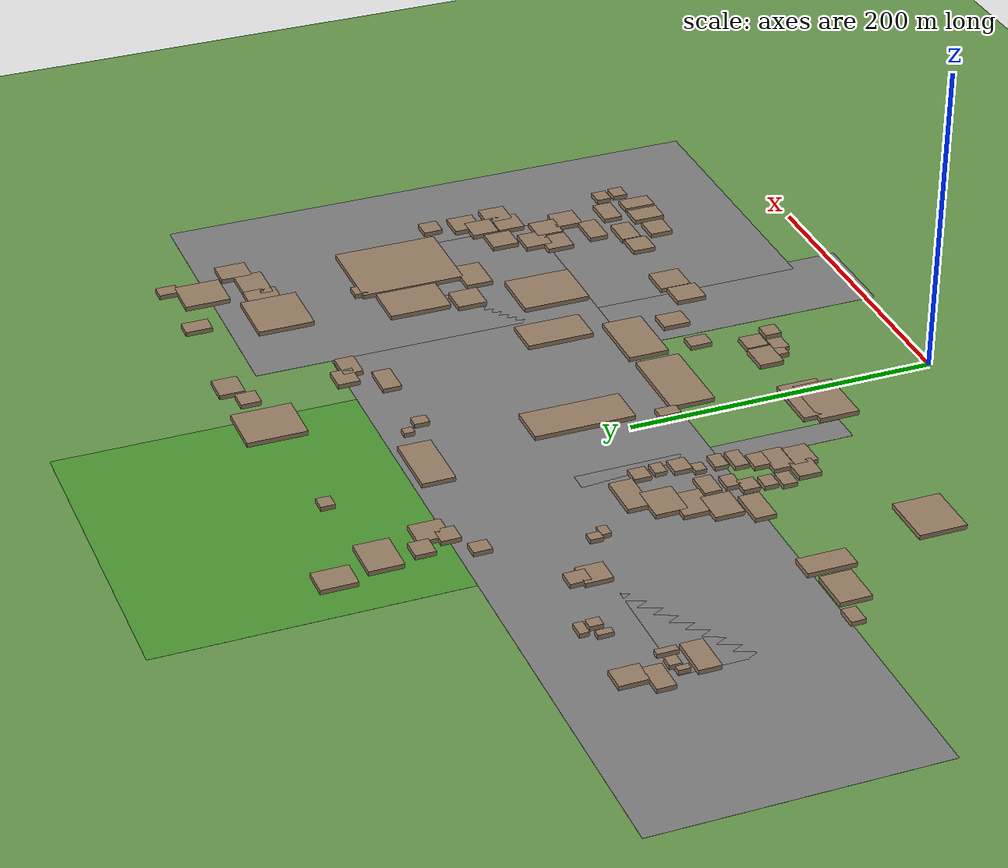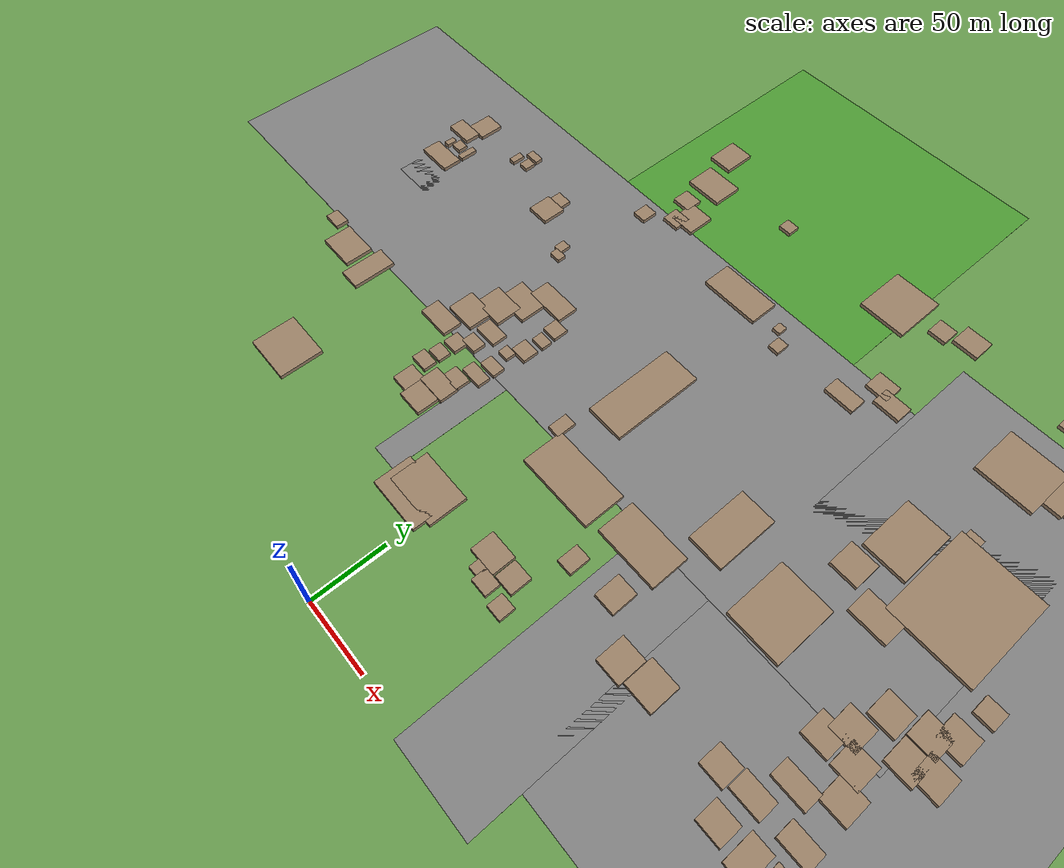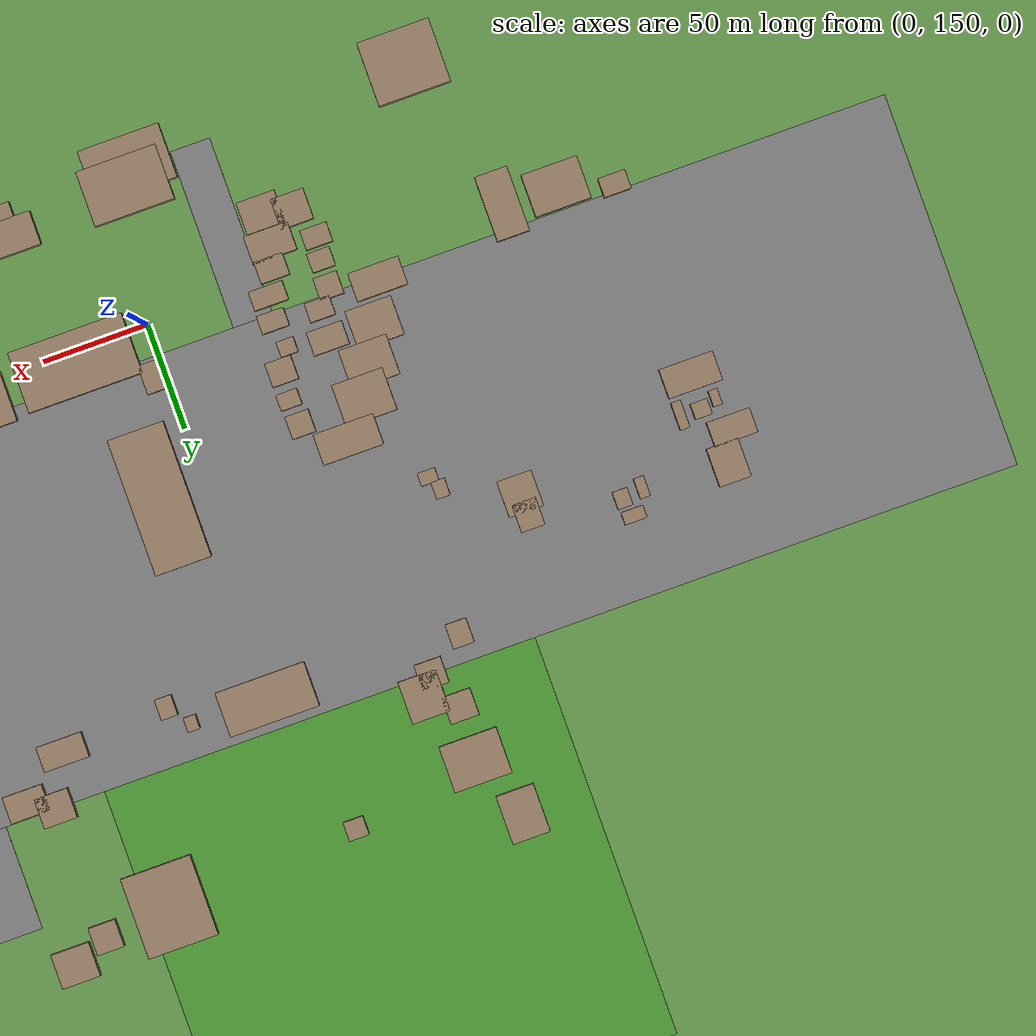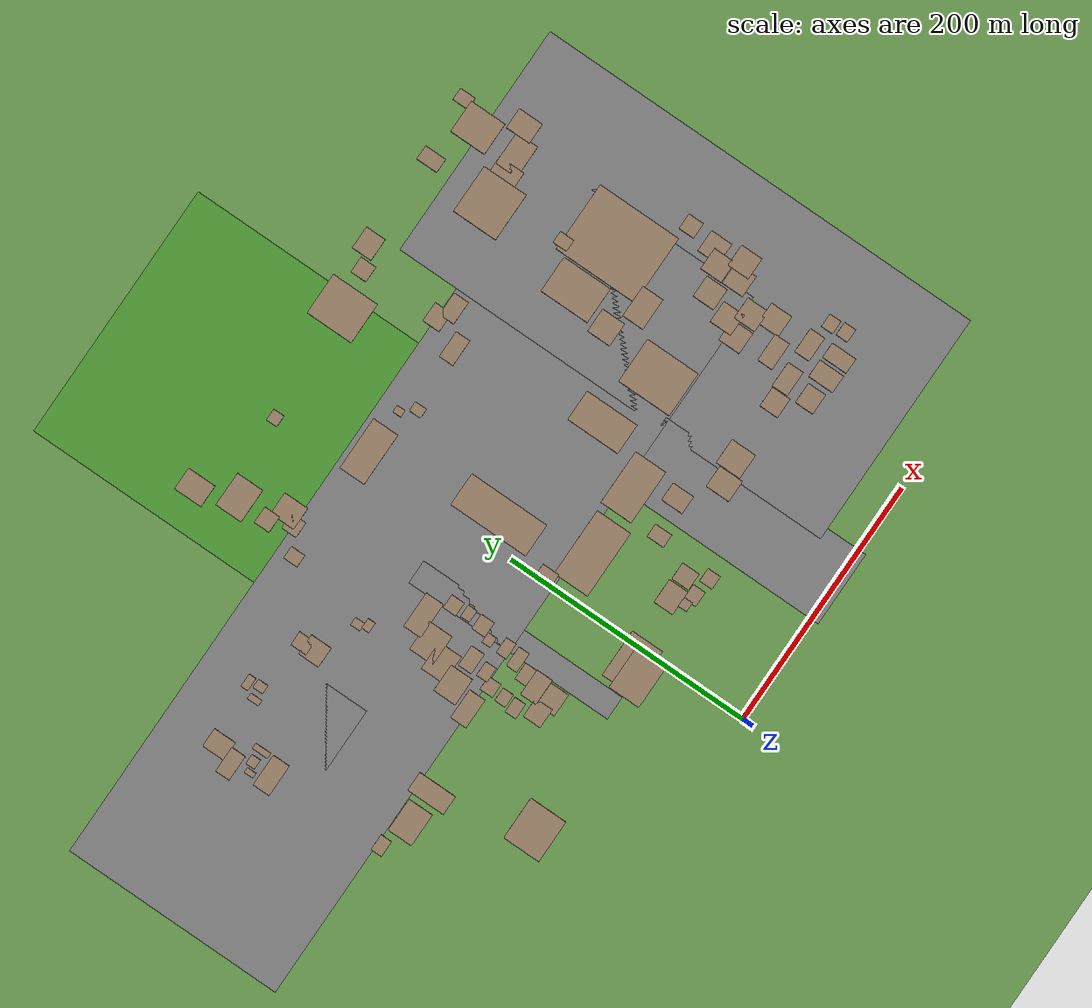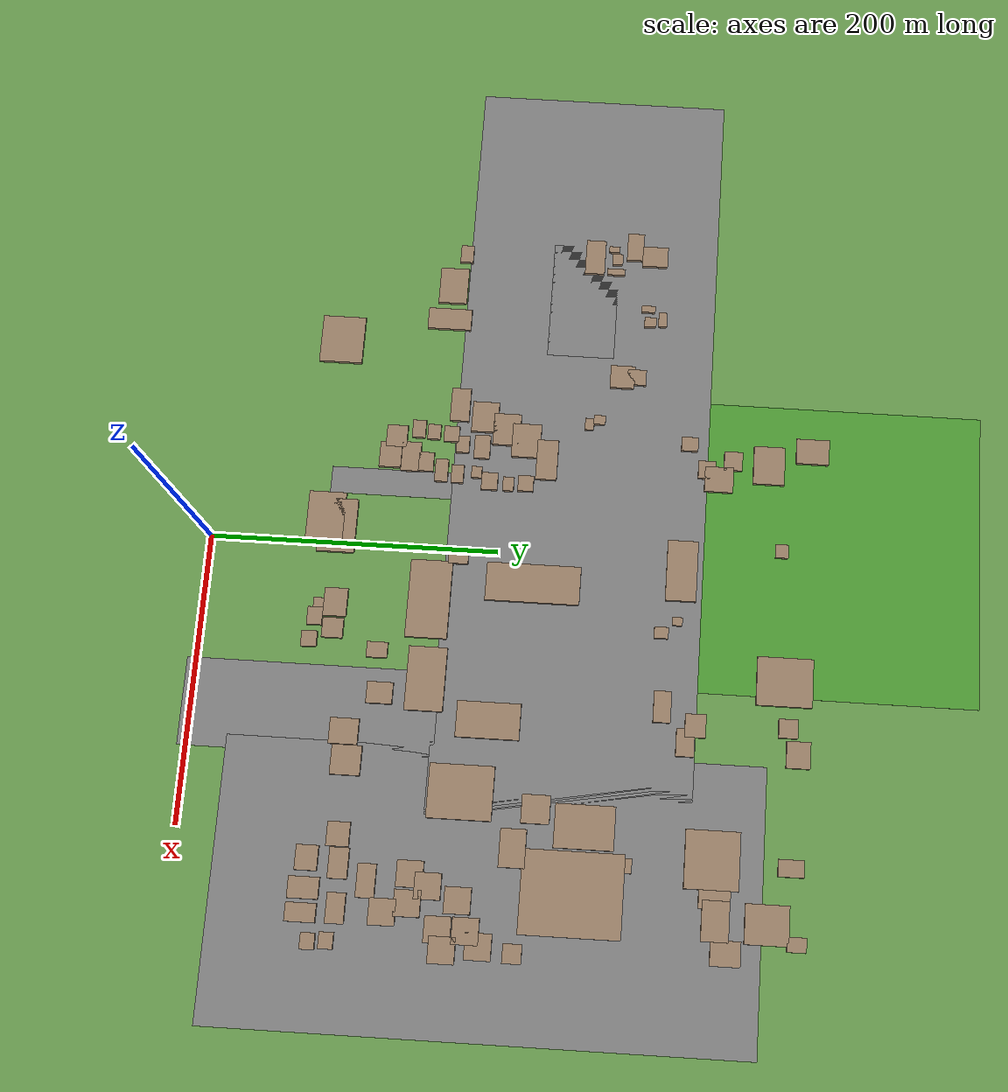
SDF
<sdf version="1.9">
 <world name="kimje_farmland">
  <model name="ground_plane">
   <static>true</static>
   <link name="link">
    <collision name="collision">
     <geometry><plane><normal>0 0 1</normal><size>2000 2000</size></plane></geometry>
    </collision>
    <visual name="visual">
     <geometry><plane><normal>0 0 1</normal><size>2000 2000</size></plane></geometry>
     <material><ambient>0.4 0.6 0.3 1</ambient><diffuse>0.4 0.6 0.3 1</diffuse></material>
    </visual>
   </link>
  </model>
  <model name="osm_4">
   <static>true</static>
   <pose>-48.92 253.60 0.040 0 0 0</pose>
   <link name="link">
    <collision name="collision"><geometry><box><size>602.51 178.39 0.080</size></box></geometry></collision>
    <visual name="visual">
     <geometry><box><size>602.51 178.39 0.080</size></box></geometry>
     <material><ambient>0.5 0.5 0.5 1</ambient><diffuse>0.5 0.5 0.5 1</diffuse></material>
    </visual>
   </link>
  </model>
  <model name="osm_79">
   <static>true</static>
   <pose>-190.80 248.13 0.040 0 0 0</pose>
   <link name="link">
    <collision name="collision"><geometry><box><size>86.01 47.51 0.080</size></box></geometry></collision>
    <visual name="visual">
     <geometry><box><size>86.01 47.51 0.080</size></box></geometry>
     <material><ambient>0.5 0.5 0.5 1</ambient><diffuse>0.5 0.5 0.5 1</diffuse></material>
    </visual>
   </link>
  </model>
  <model name="osm_104">
   <static>true</static>
   <pose>231.89 209.43 0.040 0 0 0</pose>
   <link name="link">
    <collision name="collision"><geometry><box><size>189.30 364.63 0.080</size></box></geometry></collision>
    <visual name="visual">
     <geometry><box><size>189.30 364.63 0.080</size></box></geometry>
     <material><ambient>0.5 0.5 0.5 1</ambient><diffuse>0.5 0.5 0.5 1</diffuse></material>
    </visual>
   </link>
  </model>
  <model name="osm_123">
   <static>true</static>
   <pose>-45.68 165.60 0.040 0 0 0</pose>
   <link name="link">
    <collision name="collision"><geometry><box><size>18.99 172.09 0.080</size></box></geometry></collision>
    <visual name="visual">
     <geometry><box><size>18.99 172.09 0.080</size></box></geometry>
     <material><ambient>0.5 0.5 0.5 1</ambient><diffuse>0.5 0.5 0.5 1</diffuse></material>
    </visual>
   </link>
  </model>
  <model name="osm_363">
   <static>true</static>
   <pose>-85.66 416.06 1.500 0 0 0</pose>
   <link name="link">
    <collision name="collision"><geometry><box><size>17.95 22.97 3.000</size></box></geometry></collision>
    <visual name="visual">
     <geometry><box><size>17.95 22.97 3.000</size></box></geometry>
     <material><ambient>0.6 0.5 0.4 1</ambient><diffuse>0.6 0.5 0.4 1</diffuse></material>
    </visual>
   </link>
  </model>
  <model name="osm_365">
   <static>true</static>
   <pose>-73.65 385.74 1.500 0 0 0</pose>
   <link name="link">
    <collision name="collision"><geometry><box><size>27.47 21.89 3.000</size></box></geometry></collision>
    <visual name="visual">
     <geometry><box><size>27.47 21.89 3.000</size></box></geometry>
     <material><ambient>0.6 0.5 0.4 1</ambient><diffuse>0.6 0.5 0.4 1</diffuse></material>
    </visual>
   </link>
  </model>
  <model name="osm_366">
   <static>true</static>
   <pose>-75.43 360.56 1.500 0 0 0</pose>
   <link name="link">
    <collision name="collision"><geometry><box><size>13.53 12.86 3.000</size></box></geometry></collision>
    <visual name="visual">
     <geometry><box><size>13.53 12.86 3.000</size></box></geometry>
     <material><ambient>0.6 0.5 0.4 1</ambient><diffuse>0.6 0.5 0.4 1</diffuse></material>
    </visual>
   </link>
  </model>
  <model name="osm_367">
   <static>true</static>
   <pose>-12.27 396.82 1.500 0 0 0</pose>
   <link name="link">
    <collision name="collision"><geometry><box><size>9.48 8.93 3.000</size></box></geometry></collision>
    <visual name="visual">
     <geometry><box><size>9.48 8.93 3.000</size></box></geometry>
     <material><ambient>0.6 0.5 0.4 1</ambient><diffuse>0.6 0.5 0.4 1</diffuse></material>
    </visual>
   </link>
  </model>
  <model name="osm_371">
   <static>true</static>
   <pose>79.21 401.67 1.500 0 0 0</pose>
   <link name="link">
    <collision name="collision"><geometry><box><size>33.43 38.25 3.000</size></box></geometry></collision>
    <visual name="visual">
     <geometry><box><size>33.43 38.25 3.000</size></box></geometry>
     <material><ambient>0.6 0.5 0.4 1</ambient><diffuse>0.6 0.5 0.4 1</diffuse></material>
    </visual>
   </link>
  </model>
  <model name="osm_374">
   <static>true</static>
   <pose>110.77 405.01 1.500 0 0 0</pose>
   <link name="link">
    <collision name="collision"><geometry><box><size>12.90 13.00 3.000</size></box></geometry></collision>
    <visual name="visual">
     <geometry><box><size>12.90 13.00 3.000</size></box></geometry>
     <material><ambient>0.6 0.5 0.4 1</ambient><diffuse>0.6 0.5 0.4 1</diffuse></material>
    </visual>
   </link>
  </model>
  <model name="osm_375">
   <static>true</static>
   <pose>112.59 342.37 1.500 0 0 0</pose>
   <link name="link">
    <collision name="collision"><geometry><box><size>15.87 14.13 3.000</size></box></geometry></collision>
    <visual name="visual">
     <geometry><box><size>15.87 14.13 3.000</size></box></geometry>
     <material><ambient>0.6 0.5 0.4 1</ambient><diffuse>0.6 0.5 0.4 1</diffuse></material>
    </visual>
   </link>
  </model>
  <model name="osm_376">
   <static>true</static>
   <pose>101.06 319.39 1.500 0 0 0</pose>
   <link name="link">
    <collision name="collision"><geometry><box><size>21.55 11.87 3.000</size></box></geometry></collision>
    <visual name="visual">
     <geometry><box><size>21.55 11.87 3.000</size></box></geometry>
     <material><ambient>0.6 0.5 0.4 1</ambient><diffuse>0.6 0.5 0.4 1</diffuse></material>
    </visual>
   </link>
  </model>
  <model name="osm_377">
   <static>true</static>
   <pose>41.72 326.81 1.500 0 0 0</pose>
   <link name="link">
    <collision name="collision"><geometry><box><size>5.72 6.81 3.000</size></box></geometry></collision>
    <visual name="visual">
     <geometry><box><size>5.72 6.81 3.000</size></box></geometry>
     <material><ambient>0.6 0.5 0.4 1</ambient><diffuse>0.6 0.5 0.4 1</diffuse></material>
    </visual>
   </link>
  </model>
  <model name="osm_378">
   <static>true</static>
   <pose>50.19 316.15 1.500 0 0 0</pose>
   <link name="link">
    <collision name="collision"><geometry><box><size>7.94 9.71 3.000</size></box></geometry></collision>
    <visual name="visual">
     <geometry><box><size>7.94 9.71 3.000</size></box></geometry>
     <material><ambient>0.6 0.5 0.4 1</ambient><diffuse>0.6 0.5 0.4 1</diffuse></material>
    </visual>
   </link>
  </model>
  <model name="osm_379">
   <static>true</static>
   <pose>5.88 328.18 1.500 0 0 0</pose>
   <link name="link">
    <collision name="collision"><geometry><box><size>42.71 21.14 3.000</size></box></geometry></collision>
    <visual name="visual">
     <geometry><box><size>42.71 21.14 3.000</size></box></geometry>
     <material><ambient>0.6 0.5 0.4 1</ambient><diffuse>0.6 0.5 0.4 1</diffuse></material>
    </visual>
   </link>
  </model>
  <model name="osm_380">
   <static>true</static>
   <pose>-61.38 350.97 1.500 0 0 0</pose>
   <link name="link">
    <collision name="collision"><geometry><box><size>18.13 20.05 3.000</size></box></geometry></collision>
    <visual name="visual">
     <geometry><box><size>18.13 20.05 3.000</size></box></geometry>
     <material><ambient>0.6 0.5 0.4 1</ambient><diffuse>0.6 0.5 0.4 1</diffuse></material>
    </visual>
   </link>
  </model>
  <model name="osm_381">
   <static>true</static>
   <pose>-68.00 342.38 1.500 0 0 0</pose>
   <link name="link">
    <collision name="collision"><geometry><box><size>12.72 12.32 3.000</size></box></geometry></collision>
    <visual name="visual">
     <geometry><box><size>12.72 12.32 3.000</size></box></geometry>
     <material><ambient>0.6 0.5 0.4 1</ambient><diffuse>0.6 0.5 0.4 1</diffuse></material>
    </visual>
   </link>
  </model>
  <model name="osm_382">
   <static>true</static>
   <pose>-86.16 329.47 1.500 0 0 0</pose>
   <link name="link">
    <collision name="collision"><geometry><box><size>10.06 11.69 3.000</size></box></geometry></collision>
    <visual name="visual">
     <geometry><box><size>10.06 11.69 3.000</size></box></geometry>
     <material><ambient>0.6 0.5 0.4 1</ambient><diffuse>0.6 0.5 0.4 1</diffuse></material>
    </visual>
   </link>
  </model>
  <model name="osm_383">
   <static>true</static>
   <pose>-133.61 289.45 1.500 0 0 0</pose>
   <link name="link">
    <collision name="collision"><geometry><box><size>11.31 13.15 3.000</size></box></geometry></collision>
    <visual name="visual">
     <geometry><box><size>11.31 13.15 3.000</size></box></geometry>
     <material><ambient>0.6 0.5 0.4 1</ambient><diffuse>0.6 0.5 0.4 1</diffuse></material>
    </visual>
   </link>
  </model>
  <model name="osm_384">
   <static>true</static>
   <pose>-133.29 279.19 1.500 0 0 0</pose>
   <link name="link">
    <collision name="collision"><geometry><box><size>16.53 17.18 3.000</size></box></geometry></collision>
    <visual name="visual">
     <geometry><box><size>16.53 17.18 3.000</size></box></geometry>
     <material><ambient>0.6 0.5 0.4 1</ambient><diffuse>0.6 0.5 0.4 1</diffuse></material>
    </visual>
   </link>
  </model>
  <model name="osm_385">
   <static>true</static>
   <pose>-178.57 305.63 1.500 0 0 0</pose>
   <link name="link">
    <collision name="collision"><geometry><box><size>10.53 5.94 3.000</size></box></geometry></collision>
    <visual name="visual">
     <geometry><box><size>10.53 5.94 3.000</size></box></geometry>
     <material><ambient>0.6 0.5 0.4 1</ambient><diffuse>0.6 0.5 0.4 1</diffuse></material>
    </visual>
   </link>
  </model>
  <model name="osm_386">
   <static>true</static>
   <pose>-176.20 296.85 1.500 0 0 0</pose>
   <link name="link">
    <collision name="collision"><geometry><box><size>7.14 8.34 3.000</size></box></geometry></collision>
    <visual name="visual">
     <geometry><box><size>7.14 8.34 3.000</size></box></geometry>
     <material><ambient>0.6 0.5 0.4 1</ambient><diffuse>0.6 0.5 0.4 1</diffuse></material>
    </visual>
   </link>
  </model>
  <model name="osm_387">
   <static>true</static>
   <pose>-186.16 295.00 1.500 0 0 0</pose>
   <link name="link">
    <collision name="collision"><geometry><box><size>4.84 9.67 3.000</size></box></geometry></collision>
    <visual name="visual">
     <geometry><box><size>4.84 9.67 3.000</size></box></geometry>
     <material><ambient>0.6 0.5 0.4 1</ambient><diffuse>0.6 0.5 0.4 1</diffuse></material>
    </visual>
   </link>
  </model>
  <model name="osm_389">
   <static>true</static>
   <pose>-226.97 297.80 1.500 0 0 0</pose>
   <link name="link">
    <collision name="collision"><geometry><box><size>15.13 18.22 3.000</size></box></geometry></collision>
    <visual name="visual">
     <geometry><box><size>15.13 18.22 3.000</size></box></geometry>
     <material><ambient>0.6 0.5 0.4 1</ambient><diffuse>0.6 0.5 0.4 1</diffuse></material>
    </visual>
   </link>
  </model>
  <model name="osm_390">
   <static>true</static>
   <pose>-233.76 283.23 1.500 0 0 0</pose>
   <link name="link">
    <collision name="collision"><geometry><box><size>20.58 11.82 3.000</size></box></geometry></collision>
    <visual name="visual">
     <geometry><box><size>20.58 11.82 3.000</size></box></geometry>
     <material><ambient>0.6 0.5 0.4 1</ambient><diffuse>0.6 0.5 0.4 1</diffuse></material>
    </visual>
   </link>
  </model>
  <model name="osm_391">
   <static>true</static>
   <pose>-223.39 270.70 1.500 0 0 0</pose>
   <link name="link">
    <collision name="collision"><geometry><box><size>8.03 7.45 3.000</size></box></geometry></collision>
    <visual name="visual">
     <geometry><box><size>8.03 7.45 3.000</size></box></geometry>
     <material><ambient>0.6 0.5 0.4 1</ambient><diffuse>0.6 0.5 0.4 1</diffuse></material>
    </visual>
   </link>
  </model>
  <model name="osm_392">
   <static>true</static>
   <pose>-231.10 268.00 1.500 0 0 0</pose>
   <link name="link">
    <collision name="collision"><geometry><box><size>4.25 7.60 3.000</size></box></geometry></collision>
    <visual name="visual">
     <geometry><box><size>4.25 7.60 3.000</size></box></geometry>
     <material><ambient>0.6 0.5 0.4 1</ambient><diffuse>0.6 0.5 0.4 1</diffuse></material>
    </visual>
   </link>
  </model>
  <model name="osm_393">
   <static>true</static>
   <pose>-213.55 270.14 1.500 0 0 0</pose>
   <link name="link">
    <collision name="collision"><geometry><box><size>4.61 13.02 3.000</size></box></geometry></collision>
    <visual name="visual">
     <geometry><box><size>4.61 13.02 3.000</size></box></geometry>
     <material><ambient>0.6 0.5 0.4 1</ambient><diffuse>0.6 0.5 0.4 1</diffuse></material>
    </visual>
   </link>
  </model>
  <model name="osm_394">
   <static>true</static>
   <pose>-224.13 254.53 1.500 0 0 0</pose>
   <link name="link">
    <collision name="collision"><geometry><box><size>25.74 13.98 3.000</size></box></geometry></collision>
    <visual name="visual">
     <geometry><box><size>25.74 13.98 3.000</size></box></geometry>
     <material><ambient>0.6 0.5 0.4 1</ambient><diffuse>0.6 0.5 0.4 1</diffuse></material>
    </visual>
   </link>
  </model>
  <model name="osm_409">
   <static>true</static>
   <pose>-13.96 415.51 0.025 0 0 0</pose>
   <link name="link">
    <collision name="collision"><geometry><box><size>207.53 236.82 0.050</size></box></geometry></collision>
    <visual name="visual">
     <geometry><box><size>207.53 236.82 0.050</size></box></geometry>
     <material><ambient>0.3 0.6 0.2 1</ambient><diffuse>0.3 0.6 0.2 1</diffuse></material>
    </visual>
   </link>
  </model>
  <model name="osm_410">
   <static>true</static>
   <pose>-100.16 264.87 1.500 0 0 0</pose>
   <link name="link">
    <collision name="collision"><geometry><box><size>6.56 8.19 3.000</size></box></geometry></collision>
    <visual name="visual">
     <geometry><box><size>6.56 8.19 3.000</size></box></geometry>
     <material><ambient>0.6 0.5 0.4 1</ambient><diffuse>0.6 0.5 0.4 1</diffuse></material>
    </visual>
   </link>
  </model>
  <model name="osm_411">
   <static>true</static>
   <pose>-96.61 257.95 1.500 0 0 0</pose>
   <link name="link">
    <collision name="collision"><geometry><box><size>8.46 6.31 3.000</size></box></geometry></collision>
    <visual name="visual">
     <geometry><box><size>8.46 6.31 3.000</size></box></geometry>
     <material><ambient>0.6 0.5 0.4 1</ambient><diffuse>0.6 0.5 0.4 1</diffuse></material>
    </visual>
   </link>
  </model>
  <model name="osm_503">
   <static>true</static>
   <pose>-220.87 161.38 1.500 0 0 0</pose>
   <link name="link">
    <collision name="collision"><geometry><box><size>12.93 9.11 3.000</size></box></geometry></collision>
    <visual name="visual">
     <geometry><box><size>12.93 9.11 3.000</size></box></geometry>
     <material><ambient>0.6 0.5 0.4 1</ambient><diffuse>0.6 0.5 0.4 1</diffuse></material>
    </visual>
   </link>
  </model>
  <model name="osm_504">
   <static>true</static>
   <pose>-195.56 153.74 1.500 0 0 0</pose>
   <link name="link">
    <collision name="collision"><geometry><box><size>26.72 20.20 3.000</size></box></geometry></collision>
    <visual name="visual">
     <geometry><box><size>26.72 20.20 3.000</size></box></geometry>
     <material><ambient>0.6 0.5 0.4 1</ambient><diffuse>0.6 0.5 0.4 1</diffuse></material>
    </visual>
   </link>
  </model>
  <model name="osm_505">
   <static>true</static>
   <pose>-169.84 152.92 1.500 0 0 0</pose>
   <link name="link">
    <collision name="collision"><geometry><box><size>15.49 30.97 3.000</size></box></geometry></collision>
    <visual name="visual">
     <geometry><box><size>15.49 30.97 3.000</size></box></geometry>
     <material><ambient>0.6 0.5 0.4 1</ambient><diffuse>0.6 0.5 0.4 1</diffuse></material>
    </visual>
   </link>
  </model>
  <model name="osm_506">
   <static>true</static>
   <pose>-68.36 229.76 1.500 0 0 0</pose>
   <link name="link">
    <collision name="collision"><geometry><box><size>28.82 14.77 3.000</size></box></geometry></collision>
    <visual name="visual">
     <geometry><box><size>28.82 14.77 3.000</size></box></geometry>
     <material><ambient>0.6 0.5 0.4 1</ambient><diffuse>0.6 0.5 0.4 1</diffuse></material>
    </visual>
   </link>
  </model>
  <model name="osm_507">
   <static>true</static>
   <pose>-50.26 216.00 1.500 0 0 0</pose>
   <link name="link">
    <collision name="collision"><geometry><box><size>11.20 10.83 3.000</size></box></geometry></collision>
    <visual name="visual">
     <geometry><box><size>11.20 10.83 3.000</size></box></geometry>
     <material><ambient>0.6 0.5 0.4 1</ambient><diffuse>0.6 0.5 0.4 1</diffuse></material>
    </visual>
   </link>
  </model>
  <model name="osm_508">
   <static>true</static>
   <pose>-81.59 214.33 1.500 0 0 0</pose>
   <link name="link">
    <collision name="collision"><geometry><box><size>24.40 20.16 3.000</size></box></geometry></collision>
    <visual name="visual">
     <geometry><box><size>24.40 20.16 3.000</size></box></geometry>
     <material><ambient>0.6 0.5 0.4 1</ambient><diffuse>0.6 0.5 0.4 1</diffuse></material>
    </visual>
   </link>
  </model>
  <model name="osm_509">
   <static>true</static>
   <pose>-89.00 200.08 1.500 0 0 0</pose>
   <link name="link">
    <collision name="collision"><geometry><box><size>22.95 19.16 3.000</size></box></geometry></collision>
    <visual name="visual">
     <geometry><box><size>22.95 19.16 3.000</size></box></geometry>
     <material><ambient>0.6 0.5 0.4 1</ambient><diffuse>0.6 0.5 0.4 1</diffuse></material>
    </visual>
   </link>
  </model>
  <model name="osm_510">
   <static>true</static>
   <pose>-49.10 203.81 1.500 0 0 0</pose>
   <link name="link">
    <collision name="collision"><geometry><box><size>10.02 7.66 3.000</size></box></geometry></collision>
    <visual name="visual">
     <geometry><box><size>10.02 7.66 3.000</size></box></geometry>
     <material><ambient>0.6 0.5 0.4 1</ambient><diffuse>0.6 0.5 0.4 1</diffuse></material>
    </visual>
   </link>
  </model>
  <model name="osm_511">
   <static>true</static>
   <pose>-50.37 190.59 1.500 0 0 0</pose>
   <link name="link">
    <collision name="collision"><geometry><box><size>12.41 11.33 3.000</size></box></geometry></collision>
    <visual name="visual">
     <geometry><box><size>12.41 11.33 3.000</size></box></geometry>
     <material><ambient>0.6 0.5 0.4 1</ambient><diffuse>0.6 0.5 0.4 1</diffuse></material>
    </visual>
   </link>
  </model>
  <model name="osm_512">
   <static>true</static>
   <pose>-56.40 181.05 1.500 0 0 0</pose>
   <link name="link">
    <collision name="collision"><geometry><box><size>8.25 7.25 3.000</size></box></geometry></collision>
    <visual name="visual">
     <geometry><box><size>8.25 7.25 3.000</size></box></geometry>
     <material><ambient>0.6 0.5 0.4 1</ambient><diffuse>0.6 0.5 0.4 1</diffuse></material>
    </visual>
   </link>
  </model>
  <model name="osm_513">
   <static>true</static>
   <pose>-75.14 183.58 1.500 0 0 0</pose>
   <link name="link">
    <collision name="collision"><geometry><box><size>16.96 11.14 3.000</size></box></geometry></collision>
    <visual name="visual">
     <geometry><box><size>16.96 11.14 3.000</size></box></geometry>
     <material><ambient>0.6 0.5 0.4 1</ambient><diffuse>0.6 0.5 0.4 1</diffuse></material>
    </visual>
   </link>
  </model>
  <model name="osm_514">
   <static>true</static>
   <pose>-97.34 184.13 1.500 0 0 0</pose>
   <link name="link">
    <collision name="collision"><geometry><box><size>22.06 18.61 3.000</size></box></geometry></collision>
    <visual name="visual">
     <geometry><box><size>22.06 18.61 3.000</size></box></geometry>
     <material><ambient>0.6 0.5 0.4 1</ambient><diffuse>0.6 0.5 0.4 1</diffuse></material>
    </visual>
   </link>
  </model>
  <model name="osm_515">
   <static>true</static>
   <pose>-105.42 165.86 1.500 0 0 0</pose>
   <link name="link">
    <collision name="collision"><geometry><box><size>24.17 13.48 3.000</size></box></geometry></collision>
    <visual name="visual">
     <geometry><box><size>24.17 13.48 3.000</size></box></geometry>
     <material><ambient>0.6 0.5 0.4 1</ambient><diffuse>0.6 0.5 0.4 1</diffuse></material>
    </visual>
   </link>
  </model>
  <model name="osm_516">
   <static>true</static>
   <pose>-76.17 169.89 1.500 0 0 0</pose>
   <link name="link">
    <collision name="collision"><geometry><box><size>11.98 9.07 3.000</size></box></geometry></collision>
    <visual name="visual">
     <geometry><box><size>11.98 9.07 3.000</size></box></geometry>
     <material><ambient>0.6 0.5 0.4 1</ambient><diffuse>0.6 0.5 0.4 1</diffuse></material>
    </visual>
   </link>
  </model>
  <model name="osm_517">
   <static>true</static>
   <pose>-54.30 167.74 1.500 0 0 0</pose>
   <link name="link">
    <collision name="collision"><geometry><box><size>12.90 8.64 3.000</size></box></geometry></collision>
    <visual name="visual">
     <geometry><box><size>12.90 8.64 3.000</size></box></geometry>
     <material><ambient>0.6 0.5 0.4 1</ambient><diffuse>0.6 0.5 0.4 1</diffuse></material>
    </visual>
   </link>
  </model>
  <model name="osm_518">
   <static>true</static>
   <pose>-56.25 156.38 1.500 0 0 0</pose>
   <link name="link">
    <collision name="collision"><geometry><box><size>16.25 9.06 3.000</size></box></geometry></collision>
    <visual name="visual">
     <geometry><box><size>16.25 9.06 3.000</size></box></geometry>
     <material><ambient>0.6 0.5 0.4 1</ambient><diffuse>0.6 0.5 0.4 1</diffuse></material>
    </visual>
   </link>
  </model>
  <model name="osm_519">
   <static>true</static>
   <pose>-83.34 161.32 1.500 0 0 0</pose>
   <link name="link">
    <collision name="collision"><geometry><box><size>11.30 10.76 3.000</size></box></geometry></collision>
    <visual name="visual">
     <geometry><box><size>11.30 10.76 3.000</size></box></geometry>
     <material><ambient>0.6 0.5 0.4 1</ambient><diffuse>0.6 0.5 0.4 1</diffuse></material>
    </visual>
   </link>
  </model>
  <model name="osm_520">
   <static>true</static>
   <pose>-61.87 145.17 1.500 0 0 0</pose>
   <link name="link">
    <collision name="collision"><geometry><box><size>13.71 10.49 3.000</size></box></geometry></collision>
    <visual name="visual">
     <geometry><box><size>13.71 10.49 3.000</size></box></geometry>
     <material><ambient>0.6 0.5 0.4 1</ambient><diffuse>0.6 0.5 0.4 1</diffuse></material>
    </visual>
   </link>
  </model>
  <model name="osm_521">
   <static>true</static>
   <pose>-84.19 149.01 1.500 0 0 0</pose>
   <link name="link">
    <collision name="collision"><geometry><box><size>10.83 9.03 3.000</size></box></geometry></collision>
    <visual name="visual">
     <geometry><box><size>10.83 9.03 3.000</size></box></geometry>
     <material><ambient>0.6 0.5 0.4 1</ambient><diffuse>0.6 0.5 0.4 1</diffuse></material>
    </visual>
   </link>
  </model>
  <model name="osm_522">
   <static>true</static>
   <pose>21.15 226.14 1.500 0 0 0</pose>
   <link name="link">
    <collision name="collision"><geometry><box><size>26.83 65.07 3.000</size></box></geometry></collision>
    <visual name="visual">
     <geometry><box><size>26.83 65.07 3.000</size></box></geometry>
     <material><ambient>0.6 0.5 0.4 1</ambient><diffuse>0.6 0.5 0.4 1</diffuse></material>
    </visual>
   </link>
  </model>
  <model name="osm_523">
   <static>true</static>
   <pose>5.85 173.29 1.500 0 0 0</pose>
   <link name="link">
    <collision name="collision"><geometry><box><size>8.75 13.77 3.000</size></box></geometry></collision>
    <visual name="visual">
     <geometry><box><size>8.75 13.77 3.000</size></box></geometry>
     <material><ambient>0.6 0.5 0.4 1</ambient><diffuse>0.6 0.5 0.4 1</diffuse></material>
    </visual>
   </link>
  </model>
  <model name="osm_524">
   <static>true</static>
   <pose>117.54 202.58 1.500 0 0 0</pose>
   <link name="link">
    <collision name="collision"><geometry><box><size>24.68 43.36 3.000</size></box></geometry></collision>
    <visual name="visual">
     <geometry><box><size>24.68 43.36 3.000</size></box></geometry>
     <material><ambient>0.6 0.5 0.4 1</ambient><diffuse>0.6 0.5 0.4 1</diffuse></material>
    </visual>
   </link>
  </model>
  <model name="osm_525">
   <static>true</static>
   <pose>91.80 158.11 1.500 0 0 0</pose>
   <link name="link">
    <collision name="collision"><geometry><box><size>43.97 26.25 3.000</size></box></geometry></collision>
    <visual name="visual">
     <geometry><box><size>43.97 26.25 3.000</size></box></geometry>
     <material><ambient>0.6 0.5 0.4 1</ambient><diffuse>0.6 0.5 0.4 1</diffuse></material>
    </visual>
   </link>
  </model>
  <model name="osm_526">
   <static>true</static>
   <pose>103.26 127.64 1.500 0 0 0</pose>
   <link name="link">
    <collision name="collision"><geometry><box><size>14.73 17.78 3.000</size></box></geometry></collision>
    <visual name="visual">
     <geometry><box><size>14.73 17.78 3.000</size></box></geometry>
     <material><ambient>0.6 0.5 0.4 1</ambient><diffuse>0.6 0.5 0.4 1</diffuse></material>
    </visual>
   </link>
  </model>
  <model name="osm_527">
   <static>true</static>
   <pose>36.37 155.46 1.500 0 0 0</pose>
   <link name="link">
    <collision name="collision"><geometry><box><size>54.54 28.93 3.000</size></box></geometry></collision>
    <visual name="visual">
     <geometry><box><size>54.54 28.93 3.000</size></box></geometry>
     <material><ambient>0.6 0.5 0.4 1</ambient><diffuse>0.6 0.5 0.4 1</diffuse></material>
    </visual>
   </link>
  </model>
  <model name="osm_528">
   <static>true</static>
   <pose>73.91 123.19 1.500 0 0 0</pose>
   <link name="link">
    <collision name="collision"><geometry><box><size>10.81 14.26 3.000</size></box></geometry></collision>
    <visual name="visual">
     <geometry><box><size>10.81 14.26 3.000</size></box></geometry>
     <material><ambient>0.6 0.5 0.4 1</ambient><diffuse>0.6 0.5 0.4 1</diffuse></material>
    </visual>
   </link>
  </model>
  <model name="osm_529">
   <static>true</static>
   <pose>42.48 91.56 1.500 0 0 0</pose>
   <link name="link">
    <collision name="collision"><geometry><box><size>19.70 16.04 3.000</size></box></geometry></collision>
    <visual name="visual">
     <geometry><box><size>19.70 16.04 3.000</size></box></geometry>
     <material><ambient>0.6 0.5 0.4 1</ambient><diffuse>0.6 0.5 0.4 1</diffuse></material>
    </visual>
   </link>
  </model>
  <model name="osm_530">
   <static>true</static>
   <pose>60.49 91.38 1.500 0 0 0</pose>
   <link name="link">
    <collision name="collision"><geometry><box><size>13.89 14.44 3.000</size></box></geometry></collision>
    <visual name="visual">
     <geometry><box><size>13.89 14.44 3.000</size></box></geometry>
     <material><ambient>0.6 0.5 0.4 1</ambient><diffuse>0.6 0.5 0.4 1</diffuse></material>
    </visual>
   </link>
  </model>
  <model name="osm_531">
   <static>true</static>
   <pose>-12.07 87.46 1.500 0 0 0</pose>
   <link name="link">
    <collision name="collision"><geometry><box><size>38.18 26.23 3.000</size></box></geometry></collision>
    <visual name="visual">
     <geometry><box><size>38.18 26.23 3.000</size></box></geometry>
     <material><ambient>0.6 0.5 0.4 1</ambient><diffuse>0.6 0.5 0.4 1</diffuse></material>
    </visual>
   </link>
  </model>
  <model name="osm_532">
   <static>true</static>
   <pose>-65.07 134.22 1.500 0 0 0</pose>
   <link name="link">
    <collision name="collision"><geometry><box><size>21.14 13.30 3.000</size></box></geometry></collision>
    <visual name="visual">
     <geometry><box><size>21.14 13.30 3.000</size></box></geometry>
     <material><ambient>0.6 0.5 0.4 1</ambient><diffuse>0.6 0.5 0.4 1</diffuse></material>
    </visual>
   </link>
  </model>
  <model name="osm_533">
   <static>true</static>
   <pose>-85.74 138.21 1.500 0 0 0</pose>
   <link name="link">
    <collision name="collision"><geometry><box><size>12.70 9.30 3.000</size></box></geometry></collision>
    <visual name="visual">
     <geometry><box><size>12.70 9.30 3.000</size></box></geometry>
     <material><ambient>0.6 0.5 0.4 1</ambient><diffuse>0.6 0.5 0.4 1</diffuse></material>
    </visual>
   </link>
  </model>
  <model name="osm_534">
   <static>true</static>
   <pose>-79.57 122.97 1.500 0 0 0</pose>
   <link name="link">
    <collision name="collision"><geometry><box><size>15.66 14.57 3.000</size></box></geometry></collision>
    <visual name="visual">
     <geometry><box><size>15.66 14.57 3.000</size></box></geometry>
     <material><ambient>0.6 0.5 0.4 1</ambient><diffuse>0.6 0.5 0.4 1</diffuse></material>
    </visual>
   </link>
  </model>
  <model name="osm_535">
   <static>true</static>
   <pose>-65.66 119.71 1.500 0 0 0</pose>
   <link name="link">
    <collision name="collision"><geometry><box><size>18.29 15.30 3.000</size></box></geometry></collision>
    <visual name="visual">
     <geometry><box><size>18.29 15.30 3.000</size></box></geometry>
     <material><ambient>0.6 0.5 0.4 1</ambient><diffuse>0.6 0.5 0.4 1</diffuse></material>
    </visual>
   </link>
  </model>
  <model name="osm_543">
   <static>true</static>
   <pose>-149.55 77.51 1.500 0 0 0</pose>
   <link name="link">
    <collision name="collision"><geometry><box><size>34.43 30.41 3.000</size></box></geometry></collision>
    <visual name="visual">
     <geometry><box><size>34.43 30.41 3.000</size></box></geometry>
     <material><ambient>0.6 0.5 0.4 1</ambient><diffuse>0.6 0.5 0.4 1</diffuse></material>
    </visual>
   </link>
  </model>
  <model name="osm_544">
   <static>true</static>
   <pose>-16.22 78.76 1.500 0 0 0</pose>
   <link name="link">
    <collision name="collision"><geometry><box><size>38.78 25.88 3.000</size></box></geometry></collision>
    <visual name="visual">
     <geometry><box><size>38.78 25.88 3.000</size></box></geometry>
     <material><ambient>0.6 0.5 0.4 1</ambient><diffuse>0.6 0.5 0.4 1</diffuse></material>
    </visual>
   </link>
  </model>
  <model name="osm_546">
   <static>true</static>
   <pose>43.95 80.15 1.500 0 0 0</pose>
   <link name="link">
    <collision name="collision"><geometry><box><size>7.65 7.21 3.000</size></box></geometry></collision>
    <visual name="visual">
     <geometry><box><size>7.65 7.21 3.000</size></box></geometry>
     <material><ambient>0.6 0.5 0.4 1</ambient><diffuse>0.6 0.5 0.4 1</diffuse></material>
    </visual>
   </link>
  </model>
  <model name="osm_549">
   <static>true</static>
   <pose>52.92 78.34 1.500 0 0 0</pose>
   <link name="link">
    <collision name="collision"><geometry><box><size>12.37 10.41 3.000</size></box></geometry></collision>
    <visual name="visual">
     <geometry><box><size>12.37 10.41 3.000</size></box></geometry>
     <material><ambient>0.6 0.5 0.4 1</ambient><diffuse>0.6 0.5 0.4 1</diffuse></material>
    </visual>
   </link>
  </model>
  <model name="osm_553">
   <static>true</static>
   <pose>68.99 75.99 1.500 0 0 0</pose>
   <link name="link">
    <collision name="collision"><geometry><box><size>10.95 10.76 3.000</size></box></geometry></collision>
    <visual name="visual">
     <geometry><box><size>10.95 10.76 3.000</size></box></geometry>
     <material><ambient>0.6 0.5 0.4 1</ambient><diffuse>0.6 0.5 0.4 1</diffuse></material>
    </visual>
   </link>
  </model>
  <model name="osm_666">
   <static>true</static>
   <pose>116.28 80.64 0.040 0 0 0</pose>
   <link name="link">
    <collision name="collision"><geometry><box><size>60.08 173.15 0.080</size></box></geometry></collision>
    <visual name="visual">
     <geometry><box><size>60.08 173.15 0.080</size></box></geometry>
     <material><ambient>0.5 0.5 0.5 1</ambient><diffuse>0.5 0.5 0.5 1</diffuse></material>
    </visual>
   </link>
  </model>
  <model name="osm_1057">
   <static>true</static>
   <pose>128.10 412.34 1.500 0 0 0</pose>
   <link name="link">
    <collision name="collision"><geometry><box><size>18.15 16.25 3.000</size></box></geometry></collision>
    <visual name="visual">
     <geometry><box><size>18.15 16.25 3.000</size></box></geometry>
     <material><ambient>0.6 0.5 0.4 1</ambient><diffuse>0.6 0.5 0.4 1</diffuse></material>
    </visual>
   </link>
  </model>
  <model name="osm_1061">
   <static>true</static>
   <pose>203.13 409.82 1.500 0 0 0</pose>
   <link name="link">
    <collision name="collision"><geometry><box><size>11.47 17.34 3.000</size></box></geometry></collision>
    <visual name="visual">
     <geometry><box><size>11.47 17.34 3.000</size></box></geometry>
     <material><ambient>0.6 0.5 0.4 1</ambient><diffuse>0.6 0.5 0.4 1</diffuse></material>
    </visual>
   </link>
  </model>
  <model name="osm_1062">
   <static>true</static>
   <pose>240.43 395.08 1.500 0 0 0</pose>
   <link name="link">
    <collision name="collision"><geometry><box><size>26.28 29.30 3.000</size></box></geometry></collision>
    <visual name="visual">
     <geometry><box><size>26.28 29.30 3.000</size></box></geometry>
     <material><ambient>0.6 0.5 0.4 1</ambient><diffuse>0.6 0.5 0.4 1</diffuse></material>
    </visual>
   </link>
  </model>
  <model name="osm_1063">
   <static>true</static>
   <pose>251.89 414.84 1.500 0 0 0</pose>
   <link name="link">
    <collision name="collision"><geometry><box><size>9.80 12.95 3.000</size></box></geometry></collision>
    <visual name="visual">
     <geometry><box><size>9.80 12.95 3.000</size></box></geometry>
     <material><ambient>0.6 0.5 0.4 1</ambient><diffuse>0.6 0.5 0.4 1</diffuse></material>
    </visual>
   </link>
  </model>
  <model name="osm_1100">
   <static>true</static>
   <pose>260.32 368.48 1.500 0 0 0</pose>
   <link name="link">
    <collision name="collision"><geometry><box><size>16.59 20.08 3.000</size></box></geometry></collision>
    <visual name="visual">
     <geometry><box><size>16.59 20.08 3.000</size></box></geometry>
     <material><ambient>0.6 0.5 0.4 1</ambient><diffuse>0.6 0.5 0.4 1</diffuse></material>
    </visual>
   </link>
  </model>
  <model name="osm_1101">
   <static>true</static>
   <pose>240.08 361.14 1.500 0 0 0</pose>
   <link name="link">
    <collision name="collision"><geometry><box><size>26.57 18.31 3.000</size></box></geometry></collision>
    <visual name="visual">
     <geometry><box><size>26.57 18.31 3.000</size></box></geometry>
     <material><ambient>0.6 0.5 0.4 1</ambient><diffuse>0.6 0.5 0.4 1</diffuse></material>
    </visual>
   </link>
  </model>
  <model name="osm_1102">
   <static>true</static>
   <pose>200.95 357.51 1.500 0 0 0</pose>
   <link name="link">
    <collision name="collision"><geometry><box><size>38.92 36.57 3.000</size></box></geometry></collision>
    <visual name="visual">
     <geometry><box><size>38.92 36.57 3.000</size></box></geometry>
     <material><ambient>0.6 0.5 0.4 1</ambient><diffuse>0.6 0.5 0.4 1</diffuse></material>
    </visual>
   </link>
  </model>
  <model name="osm_1103">
   <static>true</static>
   <pose>226.33 360.00 1.500 0 0 0</pose>
   <link name="link">
    <collision name="collision"><geometry><box><size>12.03 21.10 3.000</size></box></geometry></collision>
    <visual name="visual">
     <geometry><box><size>12.03 21.10 3.000</size></box></geometry>
     <material><ambient>0.6 0.5 0.4 1</ambient><diffuse>0.6 0.5 0.4 1</diffuse></material>
    </visual>
   </link>
  </model>
  <model name="osm_1104">
   <static>true</static>
   <pose>124.44 336.00 1.500 0 0 0</pose>
   <link name="link">
    <collision name="collision"><geometry><box><size>18.80 12.46 3.000</size></box></geometry></collision>
    <visual name="visual">
     <geometry><box><size>18.80 12.46 3.000</size></box></geometry>
     <material><ambient>0.6 0.5 0.4 1</ambient><diffuse>0.6 0.5 0.4 1</diffuse></material>
    </visual>
   </link>
  </model>
  <model name="osm_1105">
   <static>true</static>
   <pose>184.58 271.94 1.500 0 0 0</pose>
   <link name="link">
    <collision name="collision"><geometry><box><size>29.37 40.26 3.000</size></box></geometry></collision>
    <visual name="visual">
     <geometry><box><size>29.37 40.26 3.000</size></box></geometry>
     <material><ambient>0.6 0.5 0.4 1</ambient><diffuse>0.6 0.5 0.4 1</diffuse></material>
    </visual>
   </link>
  </model>
  <model name="osm_1106">
   <static>true</static>
   <pose>208.20 298.75 1.500 0 0 0</pose>
   <link name="link">
    <collision name="collision"><geometry><box><size>9.62 11.68 3.000</size></box></geometry></collision>
    <visual name="visual">
     <geometry><box><size>9.62 11.68 3.000</size></box></geometry>
     <material><ambient>0.6 0.5 0.4 1</ambient><diffuse>0.6 0.5 0.4 1</diffuse></material>
    </visual>
   </link>
  </model>
  <model name="osm_1107">
   <static>true</static>
   <pose>228.66 266.07 1.500 0 0 0</pose>
   <link name="link">
    <collision name="collision"><geometry><box><size>55.71 67.98 3.000</size></box></geometry></collision>
    <visual name="visual">
     <geometry><box><size>55.71 67.98 3.000</size></box></geometry>
     <material><ambient>0.6 0.5 0.4 1</ambient><diffuse>0.6 0.5 0.4 1</diffuse></material>
    </visual>
   </link>
  </model>
  <model name="osm_1331">
   <static>true</static>
   <pose>267.95 107.82 1.500 0 0 0</pose>
   <link name="link">
    <collision name="collision"><geometry><box><size>10.86 9.66 3.000</size></box></geometry></collision>
    <visual name="visual">
     <geometry><box><size>10.86 9.66 3.000</size></box></geometry>
     <material><ambient>0.6 0.5 0.4 1</ambient><diffuse>0.6 0.5 0.4 1</diffuse></material>
    </visual>
   </link>
  </model>
  <model name="osm_1332">
   <static>true</static>
   <pose>269.03 95.76 1.500 0 0 0</pose>
   <link name="link">
    <collision name="collision"><geometry><box><size>10.85 9.66 3.000</size></box></geometry></collision>
    <visual name="visual">
     <geometry><box><size>10.85 9.66 3.000</size></box></geometry>
     <material><ambient>0.6 0.5 0.4 1</ambient><diffuse>0.6 0.5 0.4 1</diffuse></material>
    </visual>
   </link>
  </model>
  <model name="osm_1348">
   <static>true</static>
   <pose>268.97 229.75 1.500 0 0 0</pose>
   <link name="link">
    <collision name="collision"><geometry><box><size>12.72 12.62 3.000</size></box></geometry></collision>
    <visual name="visual">
     <geometry><box><size>12.72 12.62 3.000</size></box></geometry>
     <material><ambient>0.6 0.5 0.4 1</ambient><diffuse>0.6 0.5 0.4 1</diffuse></material>
    </visual>
   </link>
  </model>
  <model name="osm_1364">
   <static>true</static>
   <pose>237.28 191.56 1.500 0 0 0</pose>
   <link name="link">
    <collision name="collision"><geometry><box><size>17.54 17.70 3.000</size></box></geometry></collision>
    <visual name="visual">
     <geometry><box><size>17.54 17.70 3.000</size></box></geometry>
     <material><ambient>0.6 0.5 0.4 1</ambient><diffuse>0.6 0.5 0.4 1</diffuse></material>
    </visual>
   </link>
  </model>
  <model name="osm_1365">
   <static>true</static>
   <pose>256.54 198.22 1.500 0 0 0</pose>
   <link name="link">
    <collision name="collision"><geometry><box><size>17.54 17.70 3.000</size></box></geometry></collision>
    <visual name="visual">
     <geometry><box><size>17.54 17.70 3.000</size></box></geometry>
     <material><ambient>0.6 0.5 0.4 1</ambient><diffuse>0.6 0.5 0.4 1</diffuse></material>
    </visual>
   </link>
  </model>
  <model name="osm_1366">
   <static>true</static>
   <pose>265.90 207.22 1.500 0 0 0</pose>
   <link name="link">
    <collision name="collision"><geometry><box><size>17.54 17.69 3.000</size></box></geometry></collision>
    <visual name="visual">
     <geometry><box><size>17.54 17.69 3.000</size></box></geometry>
     <material><ambient>0.6 0.5 0.4 1</ambient><diffuse>0.6 0.5 0.4 1</diffuse></material>
    </visual>
   </link>
  </model>
  <model name="osm_1368">
   <static>true</static>
   <pose>269.50 183.64 1.500 0 0 0</pose>
   <link name="link">
    <collision name="collision"><geometry><box><size>17.54 17.69 3.000</size></box></geometry></collision>
    <visual name="visual">
     <geometry><box><size>17.54 17.69 3.000</size></box></geometry>
     <material><ambient>0.6 0.5 0.4 1</ambient><diffuse>0.6 0.5 0.4 1</diffuse></material>
    </visual>
   </link>
  </model>
  <model name="osm_1370">
   <static>true</static>
   <pose>256.72 179.86 1.500 0 0 0</pose>
   <link name="link">
    <collision name="collision"><geometry><box><size>17.54 17.70 3.000</size></box></geometry></collision>
    <visual name="visual">
     <geometry><box><size>17.54 17.70 3.000</size></box></geometry>
     <material><ambient>0.6 0.5 0.4 1</ambient><diffuse>0.6 0.5 0.4 1</diffuse></material>
    </visual>
   </link>
  </model>
  <model name="osm_1371">
   <static>true</static>
   <pose>229.18 171.22 1.500 0 0 0</pose>
   <link name="link">
    <collision name="collision"><geometry><box><size>17.54 17.70 3.000</size></box></geometry></collision>
    <visual name="visual">
     <geometry><box><size>17.54 17.70 3.000</size></box></geometry>
     <material><ambient>0.6 0.5 0.4 1</ambient><diffuse>0.6 0.5 0.4 1</diffuse></material>
    </visual>
   </link>
  </model>
  <model name="osm_1372">
   <static>true</static>
   <pose>221.98 158.80 1.500 0 0 0</pose>
   <link name="link">
    <collision name="collision"><geometry><box><size>17.54 17.70 3.000</size></box></geometry></collision>
    <visual name="visual">
     <geometry><box><size>17.54 17.70 3.000</size></box></geometry>
     <material><ambient>0.6 0.5 0.4 1</ambient><diffuse>0.6 0.5 0.4 1</diffuse></material>
    </visual>
   </link>
  </model>
  <model name="osm_1373">
   <static>true</static>
   <pose>241.06 158.62 1.500 0 0 0</pose>
   <link name="link">
    <collision name="collision"><geometry><box><size>17.54 17.70 3.000</size></box></geometry></collision>
    <visual name="visual">
     <geometry><box><size>17.54 17.70 3.000</size></box></geometry>
     <material><ambient>0.6 0.5 0.4 1</ambient><diffuse>0.6 0.5 0.4 1</diffuse></material>
    </visual>
   </link>
  </model>
  <model name="osm_1374">
   <static>true</static>
   <pose>247.54 142.60 1.500 0 0 0</pose>
   <link name="link">
    <collision name="collision"><geometry><box><size>17.53 17.70 3.000</size></box></geometry></collision>
    <visual name="visual">
     <geometry><box><size>17.53 17.70 3.000</size></box></geometry>
     <material><ambient>0.6 0.5 0.4 1</ambient><diffuse>0.6 0.5 0.4 1</diffuse></material>
    </visual>
   </link>
  </model>
  <model name="osm_1790">
   <static>true</static>
   <pose>251.08 89.29 1.500 0 0 0</pose>
   <link name="link">
    <collision name="collision"><geometry><box><size>12.46 20.45 3.000</size></box></geometry></collision>
    <visual name="visual">
     <geometry><box><size>12.46 20.45 3.000</size></box></geometry>
     <material><ambient>0.6 0.5 0.4 1</ambient><diffuse>0.6 0.5 0.4 1</diffuse></material>
    </visual>
   </link>
  </model>
  <model name="osm_1791">
   <static>true</static>
   <pose>235.13 89.57 1.500 0 0 0</pose>
   <link name="link">
    <collision name="collision"><geometry><box><size>14.33 20.66 3.000</size></box></geometry></collision>
    <visual name="visual">
     <geometry><box><size>14.33 20.66 3.000</size></box></geometry>
     <material><ambient>0.6 0.5 0.4 1</ambient><diffuse>0.6 0.5 0.4 1</diffuse></material>
    </visual>
   </link>
  </model>
  <model name="osm_1792">
   <static>true</static>
   <pose>246.98 112.00 1.500 0 0 0</pose>
   <link name="link">
    <collision name="collision"><geometry><box><size>20.03 12.45 3.000</size></box></geometry></collision>
    <visual name="visual">
     <geometry><box><size>20.03 12.45 3.000</size></box></geometry>
     <material><ambient>0.6 0.5 0.4 1</ambient><diffuse>0.6 0.5 0.4 1</diffuse></material>
    </visual>
   </link>
  </model>
  <model name="osm_1793">
   <static>true</static>
   <pose>215.65 89.74 1.500 0 0 0</pose>
   <link name="link">
    <collision name="collision"><geometry><box><size>16.65 14.97 3.000</size></box></geometry></collision>
    <visual name="visual">
     <geometry><box><size>16.65 14.97 3.000</size></box></geometry>
     <material><ambient>0.6 0.5 0.4 1</ambient><diffuse>0.6 0.5 0.4 1</diffuse></material>
    </visual>
   </link>
  </model>
  <model name="osm_1794">
   <static>true</static>
   <pose>217.92 111.12 1.500 0 0 0</pose>
   <link name="link">
    <collision name="collision"><geometry><box><size>20.45 13.07 3.000</size></box></geometry></collision>
    <visual name="visual">
     <geometry><box><size>20.45 13.07 3.000</size></box></geometry>
     <material><ambient>0.6 0.5 0.4 1</ambient><diffuse>0.6 0.5 0.4 1</diffuse></material>
    </visual>
   </link>
  </model>
  <model name="osm_1795">
   <static>true</static>
   <pose>228.17 130.36 1.500 0 0 0</pose>
   <link name="link">
    <collision name="collision"><geometry><box><size>22.35 12.43 3.000</size></box></geometry></collision>
    <visual name="visual">
     <geometry><box><size>22.35 12.43 3.000</size></box></geometry>
     <material><ambient>0.6 0.5 0.4 1</ambient><diffuse>0.6 0.5 0.4 1</diffuse></material>
    </visual>
   </link>
  </model>
  <model name="osm_1796">
   <static>true</static>
   <pose>199.04 109.08 1.500 0 0 0</pose>
   <link name="link">
    <collision name="collision"><geometry><box><size>16.15 15.23 3.000</size></box></geometry></collision>
    <visual name="visual">
     <geometry><box><size>16.15 15.23 3.000</size></box></geometry>
     <material><ambient>0.6 0.5 0.4 1</ambient><diffuse>0.6 0.5 0.4 1</diffuse></material>
    </visual>
   </link>
  </model>
  <model name="osm_1797">
   <static>true</static>
   <pose>130.69 105.99 1.500 0 0 0</pose>
   <link name="link">
    <collision name="collision"><geometry><box><size>17.58 19.65 3.000</size></box></geometry></collision>
    <visual name="visual">
     <geometry><box><size>17.58 19.65 3.000</size></box></geometry>
     <material><ambient>0.6 0.5 0.4 1</ambient><diffuse>0.6 0.5 0.4 1</diffuse></material>
    </visual>
   </link>
  </model>
  <model name="osm_1847">
   <static>true</static>
   <pose>149.96 109.30 1.500 0 0 0</pose>
   <link name="link">
    <collision name="collision"><geometry><box><size>20.19 20.37 3.000</size></box></geometry></collision>
    <visual name="visual">
     <geometry><box><size>20.19 20.37 3.000</size></box></geometry>
     <material><ambient>0.6 0.5 0.4 1</ambient><diffuse>0.6 0.5 0.4 1</diffuse></material>
    </visual>
   </link>
  </model>
  <model name="osm_1848">
   <static>true</static>
   <pose>201.29 225.16 1.500 0 0 0</pose>
   <link name="link">
    <collision name="collision"><geometry><box><size>25.67 17.44 3.000</size></box></geometry></collision>
    <visual name="visual">
     <geometry><box><size>25.67 17.44 3.000</size></box></geometry>
     <material><ambient>0.6 0.5 0.4 1</ambient><diffuse>0.6 0.5 0.4 1</diffuse></material>
    </visual>
   </link>
  </model>
  <model name="osm_1849">
   <static>true</static>
   <pose>174.81 238.79 1.500 0 0 0</pose>
   <link name="link">
    <collision name="collision"><geometry><box><size>19.19 19.12 3.000</size></box></geometry></collision>
    <visual name="visual">
     <geometry><box><size>19.19 19.12 3.000</size></box></geometry>
     <material><ambient>0.6 0.5 0.4 1</ambient><diffuse>0.6 0.5 0.4 1</diffuse></material>
    </visual>
   </link>
  </model>
  <model name="osm_1875">
   <static>true</static>
   <pose>166.55 187.81 1.500 0 0 0</pose>
   <link name="link">
    <collision name="collision"><geometry><box><size>36.57 43.83 3.000</size></box></geometry></collision>
    <visual name="visual">
     <geometry><box><size>36.57 43.83 3.000</size></box></geometry>
     <material><ambient>0.6 0.5 0.4 1</ambient><diffuse>0.6 0.5 0.4 1</diffuse></material>
    </visual>
   </link>
  </model>
 </world>
</sdf>
